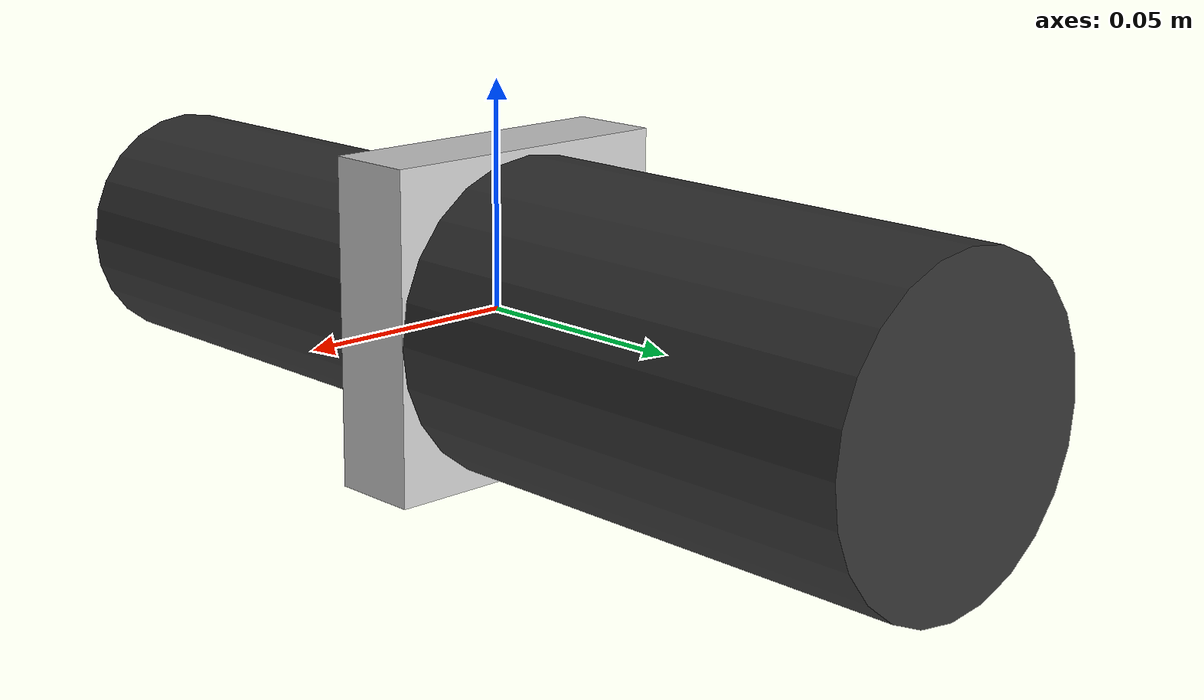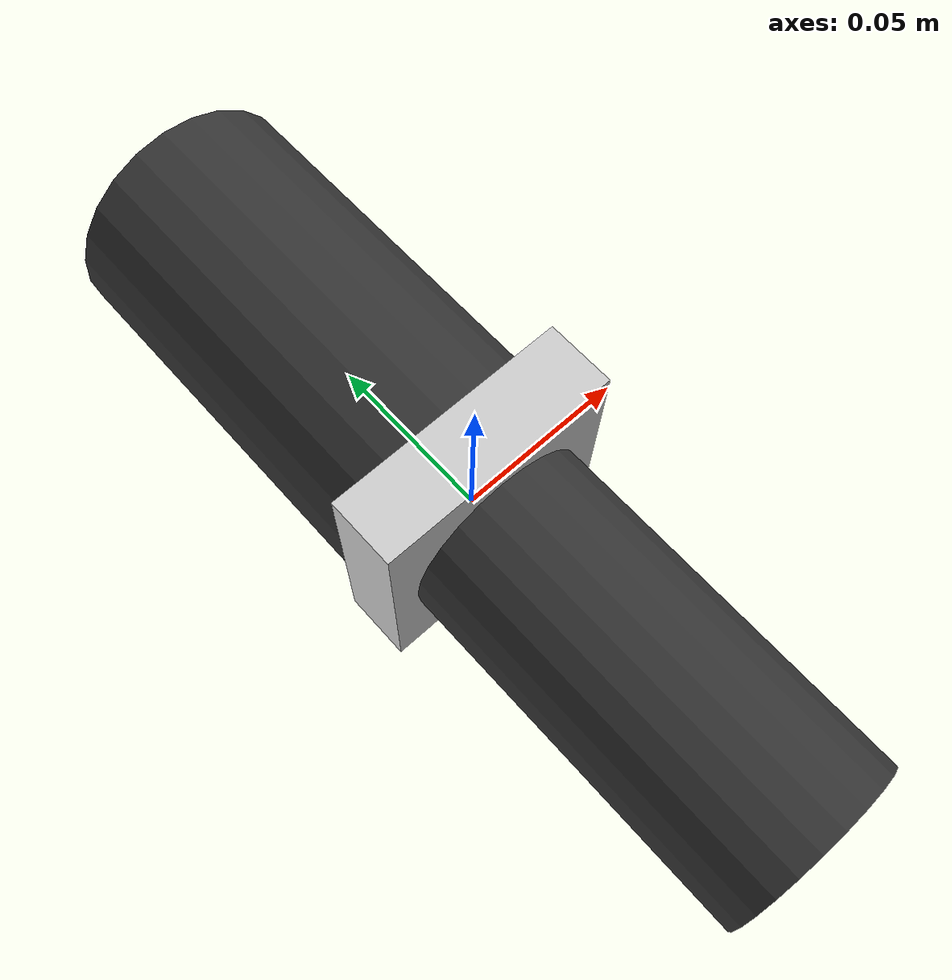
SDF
<?xml version="1.0" ?>
<sdf version="1.4">
    <model name="connector">
        <link name="motor">
			<pose>0 -0.06375 0 1.57 0 0</pose>
            <inertial>
                <mass>1.3</mass>
                <inertia>
                    <ixx>0.00149</ixx>
                    <ixy>0.0</ixy>
                    <ixz>0.0</ixz>
                    <iyy>0.00149</iyy>
                    <iyz>0.0</iyz>
                    <izz>0.00008</izz>
                </inertia>
            </inertial>
			<visual name="visual">
				<geometry>
					<cylinder>
						<radius>0.0275</radius>
						<length>0.1075</length>
					</cylinder>
				</geometry>
				<material>
					<diffuse>0.2 0.2 0.2 1.0</diffuse>
				</material>
			</visual>
			<collision name="collision">
				<geometry>
					<cylinder>
						<radius>0.0275</radius>
						<length>0.1075</length>
					</cylinder>
				</geometry>
			</collision>
            <velocity_decay>
                <linear>0</linear>
                <angular>0.01</angular>
            </velocity_decay>
        </link>

        <link name="gearbox">
            <inertial>
                <mass>2.14</mass>
                <inertia>
                    <ixx>0.00181</ixx>
                    <ixy>0.0</ixy>
                    <ixz>0.0</ixz>
                    <iyy>0.00181</iyy>
                    <iyz>0.0</iyz>
                    <izz>0.00131</izz>
                </inertia>
            </inertial>
			<pose>0 0.06525 0 1.57 0 0</pose>
			<visual name="visual">
				<geometry>
					<cylinder>
						<radius>0.035</radius>
						<length>0.115</length>
					</cylinder>
				</geometry>
				<material>
					<diffuse>0.2 0.2 0.2 1.0</diffuse>
				</material>
			</visual>
			<collision name="collision">
				<geometry>
					<cylinder>
						<radius>0.035</radius>
						<length>0.0805</length>
					</cylinder>
				</geometry>
			</collision>
            <velocity_decay>
                <linear>0</linear>
                <angular>0.01</angular>
            </velocity_decay>
        </link>

        <link name="holder">
			<pose>0 0 0.0008 0 0 0</pose>
            <inertial>
                <mass>0.03</mass>
                <inertia>
                    <ixx>1</ixx>
                    <ixy>0.0</ixy>
                    <ixz>0.0</ixz>
                    <iyy>1</iyy>
                    <iyz>0.0</iyz>
                    <izz>1</izz>
                </inertia>
            </inertial>
			<visual name="visual">
				<geometry>
					<box>
						<size>0.07 0.02 0.0716</size>
					</box>
				</geometry>
				<material>
					<diffuse>0.8 0.8 0.8 1.0</diffuse>
				</material>
			</visual>
			<collision name="collision">
				<geometry>
					<box>
						<size>0.07 0.02 0.0716</size>
					</box>
				</geometry>
			</collision>
        </link>

        <joint name="motor_joint" type="prismatic">
            <child>motor</child>
            <parent>holder</parent>
            <axis>
                <xyz>0 1 0</xyz>
                <limit>
                    <upper>0</upper>
                    <lower>0</lower>
                </limit>
            </axis>
        </joint>

        <joint name="gearbox_joint" type="prismatic">
            <child>gearbox</child>
            <parent>holder</parent>
            <axis>
                <xyz>0 1 0</xyz>
                <limit>
                    <upper>0</upper>
                    <lower>0</lower>
                </limit>
            </axis>
        </joint>
	</model>
</sdf>
